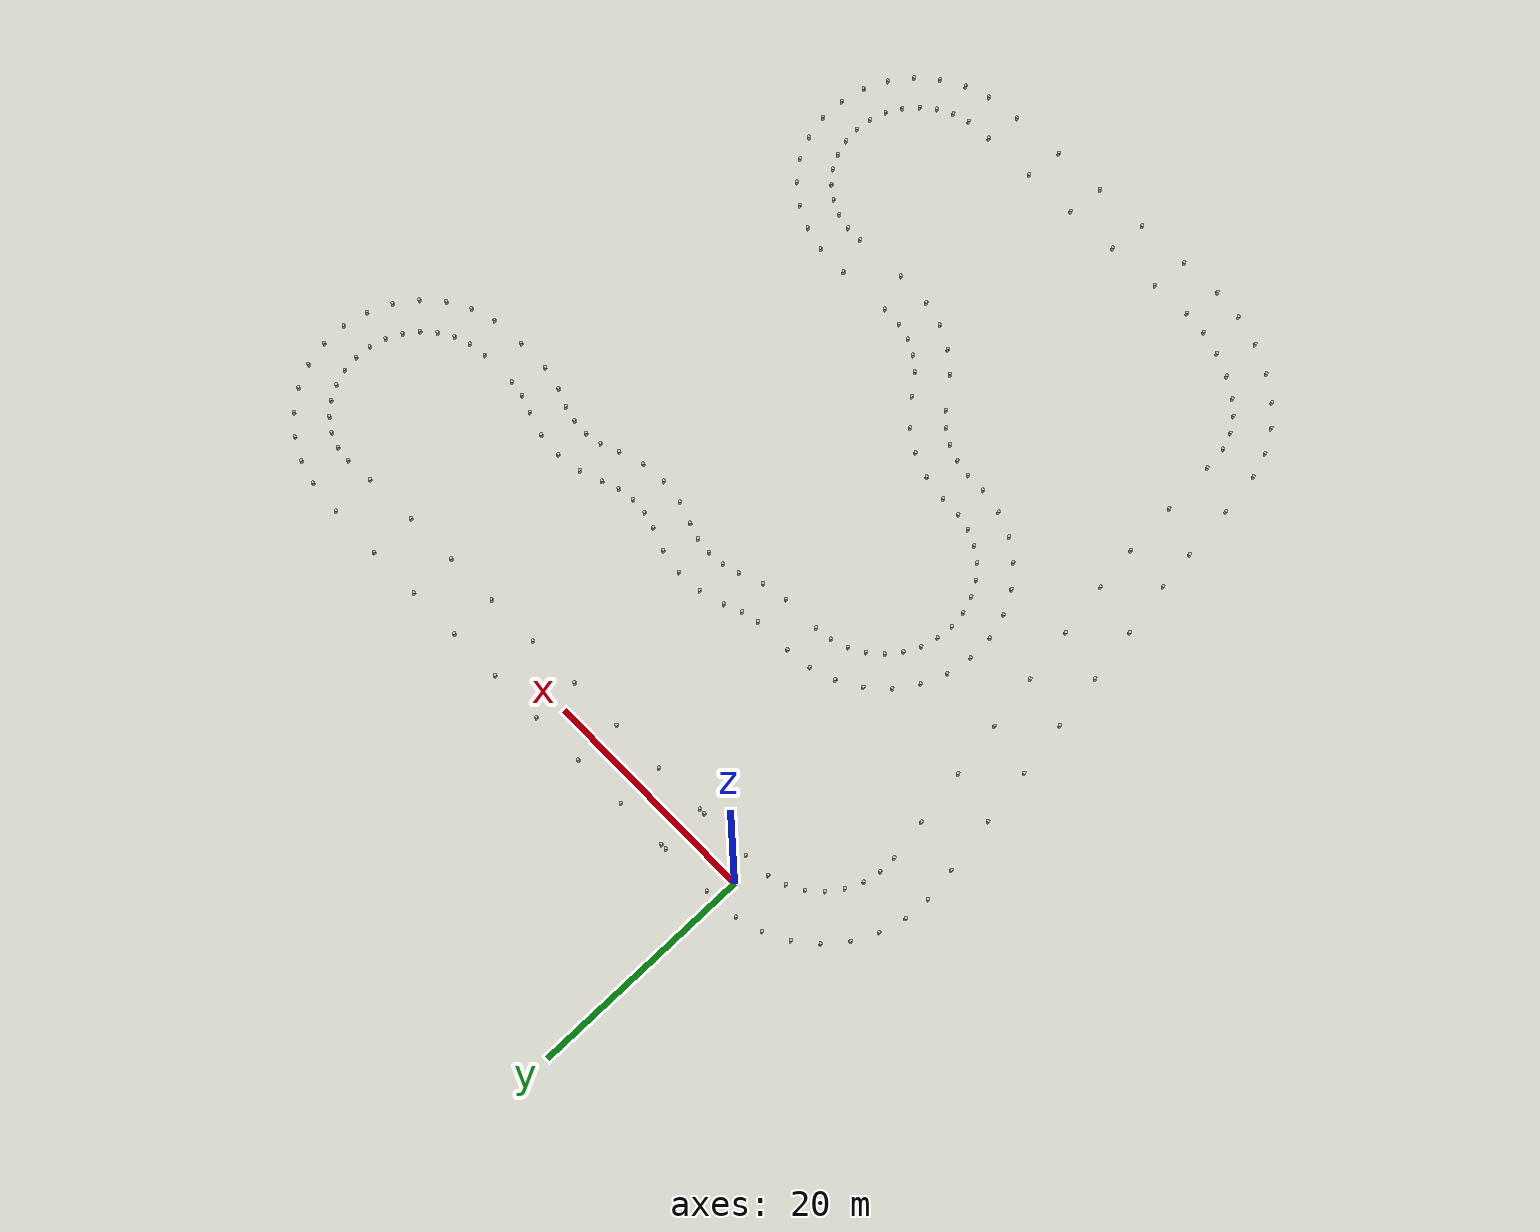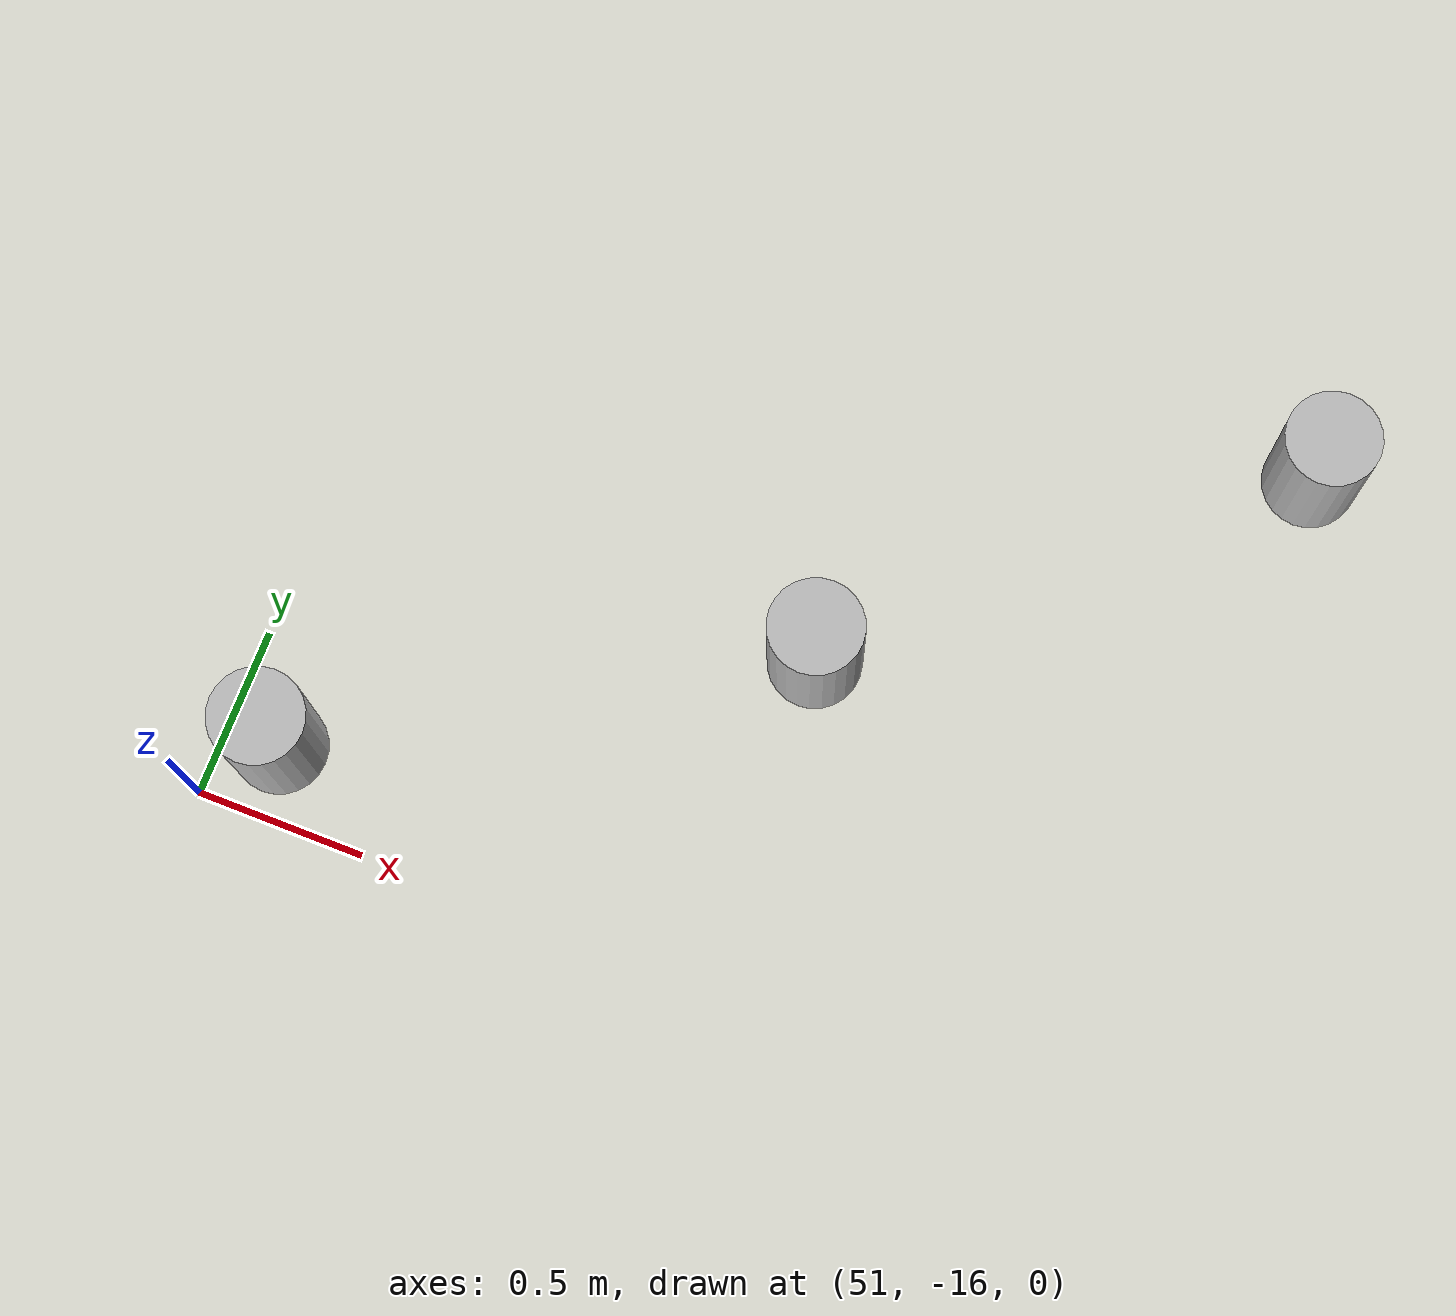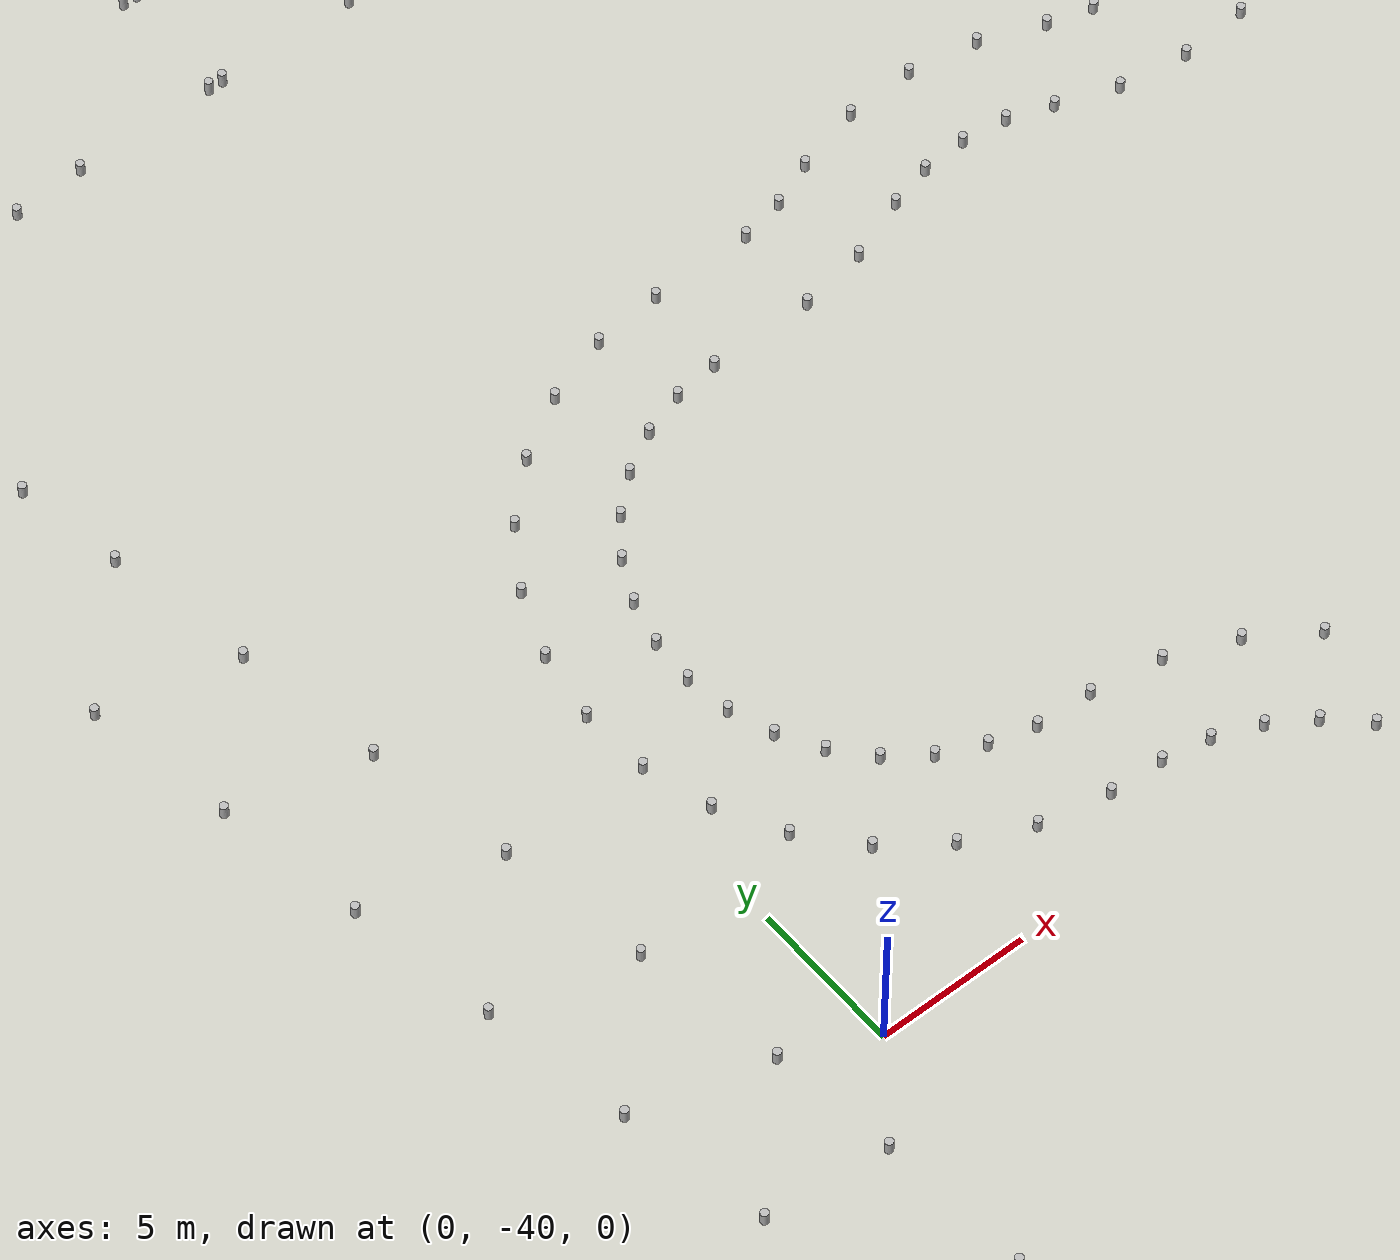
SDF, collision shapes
<?xml version='1.0'?>
<sdf version='1.6'>
  <model name='track'>

    <include>
      <pose>11.0 2.1 0.225 0 0 0</pose>
      <uri>model://blue_cone</uri>
      <name>blue_cone_0</name>

      <covariance x="0.01" y="0.01" xy="0.0"/>

    </include>

    <include>
      <pose>16.0 2.1 0.225 0 0 0</pose>
      <uri>model://blue_cone</uri>
      <name>blue_cone_1</name>

      <covariance x="0.01" y="0.01" xy="0.0"/>

    </include>

    <include>
      <pose>21.0 2.1 0.225 0 0 0</pose>
      <uri>model://blue_cone</uri>
      <name>blue_cone_2</name>

      <covariance x="0.01" y="0.01" xy="0.0"/>

    </include>

    <include>
      <pose>26.0 2.1 0.225 0 0 0</pose>
      <uri>model://blue_cone</uri>
      <name>blue_cone_3</name>

      <covariance x="0.01" y="0.01" xy="0.0"/>

    </include>

    <include>
      <pose>31.0 2.1 0.225 0 0 0</pose>
      <uri>model://blue_cone</uri>
      <name>blue_cone_4</name>

      <covariance x="0.01" y="0.01" xy="0.0"/>

    </include>

    <include>
      <pose>36.0 2.1 0.225 0 0 0</pose>
      <uri>model://blue_cone</uri>
      <name>blue_cone_5</name>

      <covariance x="0.01" y="0.01" xy="0.0"/>

    </include>

    <include>
      <pose>41.0 2.1 0.225 0 0 0</pose>
      <uri>model://blue_cone</uri>
      <name>blue_cone_6</name>

      <covariance x="0.01" y="0.01" xy="0.0"/>

    </include>

    <include>
      <pose>45.99 1.96 0.225 0 0 0</pose>
      <uri>model://blue_cone</uri>
      <name>blue_cone_7</name>

      <covariance x="0.01" y="0.01" xy="0.0"/>

    </include>

    <include>
      <pose>49.23 1.67 0.225 0 0 0</pose>
      <uri>model://blue_cone</uri>
      <name>blue_cone_8</name>

      <covariance x="0.01" y="0.01" xy="0.0"/>

    </include>

    <include>
      <pose>51.45 1.06 0.225 0 0 0</pose>
      <uri>model://blue_cone</uri>
      <name>blue_cone_9</name>

      <covariance x="0.01" y="0.01" xy="0.0"/>

    </include>

    <include>
      <pose>53.51 0.03 0.225 0 0 0</pose>
      <uri>model://blue_cone</uri>
      <name>blue_cone_10</name>

      <covariance x="0.01" y="0.01" xy="0.0"/>

    </include>

    <include>
      <pose>55.32 -1.39 0.225 0 0 0</pose>
      <uri>model://blue_cone</uri>
      <name>blue_cone_11</name>

      <covariance x="0.01" y="0.01" xy="0.0"/>

    </include>

    <include>
      <pose>56.8 -3.15 0.225 0 0 0</pose>
      <uri>model://blue_cone</uri>
      <name>blue_cone_12</name>

      <covariance x="0.01" y="0.01" xy="0.0"/>

    </include>

    <include>
      <pose>57.87 -5.19 0.225 0 0 0</pose>
      <uri>model://blue_cone</uri>
      <name>blue_cone_13</name>

      <covariance x="0.01" y="0.01" xy="0.0"/>

    </include>

    <include>
      <pose>58.46 -7.42 0.225 0 0 0</pose>
      <uri>model://blue_cone</uri>
      <name>blue_cone_14</name>

      <covariance x="0.01" y="0.01" xy="0.0"/>

    </include>

    <include>
      <pose>58.56 -9.72 0.225 0 0 0</pose>
      <uri>model://blue_cone</uri>
      <name>blue_cone_15</name>

      <covariance x="0.01" y="0.01" xy="0.0"/>

    </include>

    <include>
      <pose>58.15 -11.98 0.225 0 0 0</pose>
      <uri>model://blue_cone</uri>
      <name>blue_cone_16</name>

      <covariance x="0.01" y="0.01" xy="0.0"/>

    </include>

    <include>
      <pose>57.26 -14.11 0.225 0 0 0</pose>
      <uri>model://blue_cone</uri>
      <name>blue_cone_17</name>

      <covariance x="0.01" y="0.01" xy="0.0"/>

    </include>

    <include>
      <pose>55.92 -15.98 0.225 0 0 0</pose>
      <uri>model://blue_cone</uri>
      <name>blue_cone_18</name>

      <covariance x="0.01" y="0.01" xy="0.0"/>

    </include>

    <include>
      <pose>54.21 -17.53 0.225 0 0 0</pose>
      <uri>model://blue_cone</uri>
      <name>blue_cone_19</name>

      <covariance x="0.01" y="0.01" xy="0.0"/>

    </include>

    <include>
      <pose>52.21 -18.66 0.225 0 0 0</pose>
      <uri>model://blue_cone</uri>
      <name>blue_cone_20</name>

      <covariance x="0.01" y="0.01" xy="0.0"/>

    </include>

    <include>
      <pose>50.0 -19.32 0.225 0 0 0</pose>
      <uri>model://blue_cone</uri>
      <name>blue_cone_21</name>

      <covariance x="0.01" y="0.01" xy="0.0"/>

    </include>

    <include>
      <pose>46.79 -19.5 0.225 0 0 0</pose>
      <uri>model://blue_cone</uri>
      <name>blue_cone_22</name>

      <covariance x="0.01" y="0.01" xy="0.0"/>

    </include>

    <include>
      <pose>43.68 -19.42 0.225 0 0 0</pose>
      <uri>model://blue_cone</uri>
      <name>blue_cone_23</name>

      <covariance x="0.01" y="0.01" xy="0.0"/>

    </include>

    <include>
      <pose>41.41 -18.88 0.225 0 0 0</pose>
      <uri>model://blue_cone</uri>
      <name>blue_cone_24</name>

      <covariance x="0.01" y="0.01" xy="0.0"/>

    </include>

    <include>
      <pose>39.78 -18.22 0.225 0 0 0</pose>
      <uri>model://blue_cone</uri>
      <name>blue_cone_25</name>

      <covariance x="0.01" y="0.01" xy="0.0"/>

    </include>

    <include>
      <pose>38.28 -17.85 0.225 0 0 0</pose>
      <uri>model://blue_cone</uri>
      <name>blue_cone_26</name>

      <covariance x="0.01" y="0.01" xy="0.0"/>

    </include>

    <include>
      <pose>36.75 -17.79 0.225 0 0 0</pose>
      <uri>model://blue_cone</uri>
      <name>blue_cone_27</name>

      <covariance x="0.01" y="0.01" xy="0.0"/>

    </include>

    <include>
      <pose>35.23 -18.02 0.225 0 0 0</pose>
      <uri>model://blue_cone</uri>
      <name>blue_cone_28</name>

      <covariance x="0.01" y="0.01" xy="0.0"/>

    </include>

    <include>
      <pose>33.59 -18.63 0.225 0 0 0</pose>
      <uri>model://blue_cone</uri>
      <name>blue_cone_29</name>

      <covariance x="0.01" y="0.01" xy="0.0"/>

    </include>

    <include>
      <pose>31.35 -19.31 0.225 0 0 0</pose>
      <uri>model://blue_cone</uri>
      <name>blue_cone_30</name>

      <covariance x="0.01" y="0.01" xy="0.0"/>

    </include>

    <include>
      <pose>29.02 -19.49 0.225 0 0 0</pose>
      <uri>model://blue_cone</uri>
      <name>blue_cone_31</name>

      <covariance x="0.01" y="0.01" xy="0.0"/>

    </include>

    <include>
      <pose>26.7 -19.17 0.225 0 0 0</pose>
      <uri>model://blue_cone</uri>
      <name>blue_cone_32</name>

      <covariance x="0.01" y="0.01" xy="0.0"/>

    </include>

    <include>
      <pose>24.73 -18.47 0.225 0 0 0</pose>
      <uri>model://blue_cone</uri>
      <name>blue_cone_33</name>

      <covariance x="0.01" y="0.01" xy="0.0"/>

    </include>

    <include>
      <pose>23.27 -17.97 0.225 0 0 0</pose>
      <uri>model://blue_cone</uri>
      <name>blue_cone_34</name>

      <covariance x="0.01" y="0.01" xy="0.0"/>

    </include>

    <include>
      <pose>21.75 -17.78 0.225 0 0 0</pose>
      <uri>model://blue_cone</uri>
      <name>blue_cone_35</name>

      <covariance x="0.01" y="0.01" xy="0.0"/>

    </include>

    <include>
      <pose>20.21 -17.89 0.225 0 0 0</pose>
      <uri>model://blue_cone</uri>
      <name>blue_cone_36</name>

      <covariance x="0.01" y="0.01" xy="0.0"/>

    </include>

    <include>
      <pose>18.73 -18.29 0.225 0 0 0</pose>
      <uri>model://blue_cone</uri>
      <name>blue_cone_37</name>

      <covariance x="0.01" y="0.01" xy="0.0"/>

    </include>

    <include>
      <pose>16.66 -19.08 0.225 0 0 0</pose>
      <uri>model://blue_cone</uri>
      <name>blue_cone_38</name>

      <covariance x="0.01" y="0.01" xy="0.0"/>

    </include>

    <include>
      <pose>14.36 -19.48 0.225 0 0 0</pose>
      <uri>model://blue_cone</uri>
      <name>blue_cone_39</name>

      <covariance x="0.01" y="0.01" xy="0.0"/>

    </include>

    <include>
      <pose>10.84 -19.5 0.225 0 0 0</pose>
      <uri>model://blue_cone</uri>
      <name>blue_cone_40</name>

      <covariance x="0.01" y="0.01" xy="0.0"/>

    </include>

    <include>
      <pose>9.31 -19.69 0.225 0 0 0</pose>
      <uri>model://blue_cone</uri>
      <name>blue_cone_41</name>

      <covariance x="0.01" y="0.01" xy="0.0"/>

    </include>

    <include>
      <pose>7.85 -20.18 0.225 0 0 0</pose>
      <uri>model://blue_cone</uri>
      <name>blue_cone_42</name>

      <covariance x="0.01" y="0.01" xy="0.0"/>

    </include>

    <include>
      <pose>6.51 -20.94 0.225 0 0 0</pose>
      <uri>model://blue_cone</uri>
      <name>blue_cone_43</name>

      <covariance x="0.01" y="0.01" xy="0.0"/>

    </include>

    <include>
      <pose>5.35 -21.95 0.225 0 0 0</pose>
      <uri>model://blue_cone</uri>
      <name>blue_cone_44</name>

      <covariance x="0.01" y="0.01" xy="0.0"/>

    </include>

    <include>
      <pose>4.41 -23.16 0.225 0 0 0</pose>
      <uri>model://blue_cone</uri>
      <name>blue_cone_45</name>

      <covariance x="0.01" y="0.01" xy="0.0"/>

    </include>

    <include>
      <pose>3.73 -24.54 0.225 0 0 0</pose>
      <uri>model://blue_cone</uri>
      <name>blue_cone_46</name>

      <covariance x="0.01" y="0.01" xy="0.0"/>

    </include>

    <include>
      <pose>3.33 -26.03 0.225 0 0 0</pose>
      <uri>model://blue_cone</uri>
      <name>blue_cone_47</name>

      <covariance x="0.01" y="0.01" xy="0.0"/>

    </include>

    <include>
      <pose>3.23 -27.56 0.225 0 0 0</pose>
      <uri>model://blue_cone</uri>
      <name>blue_cone_48</name>

      <covariance x="0.01" y="0.01" xy="0.0"/>

    </include>

    <include>
      <pose>3.43 -29.09 0.225 0 0 0</pose>
      <uri>model://blue_cone</uri>
      <name>blue_cone_49</name>

      <covariance x="0.01" y="0.01" xy="0.0"/>

    </include>

    <include>
      <pose>3.93 -30.54 0.225 0 0 0</pose>
      <uri>model://blue_cone</uri>
      <name>blue_cone_50</name>

      <covariance x="0.01" y="0.01" xy="0.0"/>

    </include>

    <include>
      <pose>4.7 -31.87 0.225 0 0 0</pose>
      <uri>model://blue_cone</uri>
      <name>blue_cone_51</name>

      <covariance x="0.01" y="0.01" xy="0.0"/>

    </include>

    <include>
      <pose>5.72 -33.03 0.225 0 0 0</pose>
      <uri>model://blue_cone</uri>
      <name>blue_cone_52</name>

      <covariance x="0.01" y="0.01" xy="0.0"/>

    </include>

    <include>
      <pose>6.95 -33.95 0.225 0 0 0</pose>
      <uri>model://blue_cone</uri>
      <name>blue_cone_53</name>

      <covariance x="0.01" y="0.01" xy="0.0"/>

    </include>

    <include>
      <pose>8.34 -34.62 0.225 0 0 0</pose>
      <uri>model://blue_cone</uri>
      <name>blue_cone_54</name>

      <covariance x="0.01" y="0.01" xy="0.0"/>

    </include>

    <include>
      <pose>9.83 -35.01 0.225 0 0 0</pose>
      <uri>model://blue_cone</uri>
      <name>blue_cone_55</name>

      <covariance x="0.01" y="0.01" xy="0.0"/>

    </include>

    <include>
      <pose>11.71 -35.12 0.225 0 0 0</pose>
      <uri>model://blue_cone</uri>
      <name>blue_cone_56</name>

      <covariance x="0.01" y="0.01" xy="0.0"/>

    </include>

    <include>
      <pose>14.05 -35.52 0.225 0 0 0</pose>
      <uri>model://blue_cone</uri>
      <name>blue_cone_57</name>

      <covariance x="0.01" y="0.01" xy="0.0"/>

    </include>

    <include>
      <pose>16.25 -36.41 0.225 0 0 0</pose>
      <uri>model://blue_cone</uri>
      <name>blue_cone_58</name>

      <covariance x="0.01" y="0.01" xy="0.0"/>

    </include>

    <include>
      <pose>18.21 -37.74 0.225 0 0 0</pose>
      <uri>model://blue_cone</uri>
      <name>blue_cone_59</name>

      <covariance x="0.01" y="0.01" xy="0.0"/>

    </include>

    <include>
      <pose>20.15 -39.86 0.225 0 0 0</pose>
      <uri>model://blue_cone</uri>
      <name>blue_cone_60</name>

      <covariance x="0.01" y="0.01" xy="0.0"/>

    </include>

    <include>
      <pose>21.61 -41.67 0.225 0 0 0</pose>
      <uri>model://blue_cone</uri>
      <name>blue_cone_61</name>

      <covariance x="0.01" y="0.01" xy="0.0"/>

    </include>

    <include>
      <pose>22.82 -42.69 0.225 0 0 0</pose>
      <uri>model://blue_cone</uri>
      <name>blue_cone_62</name>

      <covariance x="0.01" y="0.01" xy="0.0"/>

    </include>

    <include>
      <pose>24.21 -43.45 0.225 0 0 0</pose>
      <uri>model://blue_cone</uri>
      <name>blue_cone_63</name>

      <covariance x="0.01" y="0.01" xy="0.0"/>

    </include>

    <include>
      <pose>25.72 -43.91 0.225 0 0 0</pose>
      <uri>model://blue_cone</uri>
      <name>blue_cone_64</name>

      <covariance x="0.01" y="0.01" xy="0.0"/>

    </include>

    <include>
      <pose>27.59 -44.04 0.225 0 0 0</pose>
      <uri>model://blue_cone</uri>
      <name>blue_cone_65</name>

      <covariance x="0.01" y="0.01" xy="0.0"/>

    </include>

    <include>
      <pose>32.59 -44.0 0.225 0 0 0</pose>
      <uri>model://blue_cone</uri>
      <name>blue_cone_66</name>

      <covariance x="0.01" y="0.01" xy="0.0"/>

    </include>

    <include>
      <pose>35.56 -44.16 0.225 0 0 0</pose>
      <uri>model://blue_cone</uri>
      <name>blue_cone_67</name>

      <covariance x="0.01" y="0.01" xy="0.0"/>

    </include>

    <include>
      <pose>37.81 -44.76 0.225 0 0 0</pose>
      <uri>model://blue_cone</uri>
      <name>blue_cone_68</name>

      <covariance x="0.01" y="0.01" xy="0.0"/>

    </include>

    <include>
      <pose>39.88 -45.81 0.225 0 0 0</pose>
      <uri>model://blue_cone</uri>
      <name>blue_cone_69</name>

      <covariance x="0.01" y="0.01" xy="0.0"/>

    </include>

    <include>
      <pose>41.69 -47.27 0.225 0 0 0</pose>
      <uri>model://blue_cone</uri>
      <name>blue_cone_70</name>

      <covariance x="0.01" y="0.01" xy="0.0"/>

    </include>

    <include>
      <pose>43.15 -49.08 0.225 0 0 0</pose>
      <uri>model://blue_cone</uri>
      <name>blue_cone_71</name>

      <covariance x="0.01" y="0.01" xy="0.0"/>

    </include>

    <include>
      <pose>44.18 -51.16 0.225 0 0 0</pose>
      <uri>model://blue_cone</uri>
      <name>blue_cone_72</name>

      <covariance x="0.01" y="0.01" xy="0.0"/>

    </include>

    <include>
      <pose>44.74 -53.42 0.225 0 0 0</pose>
      <uri>model://blue_cone</uri>
      <name>blue_cone_73</name>

      <covariance x="0.01" y="0.01" xy="0.0"/>

    </include>

    <include>
      <pose>44.79 -55.75 0.225 0 0 0</pose>
      <uri>model://blue_cone</uri>
      <name>blue_cone_74</name>

      <covariance x="0.01" y="0.01" xy="0.0"/>

    </include>

    <include>
      <pose>44.34 -58.03 0.225 0 0 0</pose>
      <uri>model://blue_cone</uri>
      <name>blue_cone_75</name>

      <covariance x="0.01" y="0.01" xy="0.0"/>

    </include>

    <include>
      <pose>43.41 -60.16 0.225 0 0 0</pose>
      <uri>model://blue_cone</uri>
      <name>blue_cone_76</name>

      <covariance x="0.01" y="0.01" xy="0.0"/>

    </include>

    <include>
      <pose>42.04 -62.04 0.225 0 0 0</pose>
      <uri>model://blue_cone</uri>
      <name>blue_cone_77</name>

      <covariance x="0.01" y="0.01" xy="0.0"/>

    </include>

    <include>
      <pose>40.3 -63.58 0.225 0 0 0</pose>
      <uri>model://blue_cone</uri>
      <name>blue_cone_78</name>

      <covariance x="0.01" y="0.01" xy="0.0"/>

    </include>

    <include>
      <pose>38.27 -64.73 0.225 0 0 0</pose>
      <uri>model://blue_cone</uri>
      <name>blue_cone_79</name>

      <covariance x="0.01" y="0.01" xy="0.0"/>

    </include>

    <include>
      <pose>36.05 -65.42 0.225 0 0 0</pose>
      <uri>model://blue_cone</uri>
      <name>blue_cone_80</name>

      <covariance x="0.01" y="0.01" xy="0.0"/>

    </include>

    <include>
      <pose>32.82 -65.67 0.225 0 0 0</pose>
      <uri>model://blue_cone</uri>
      <name>blue_cone_81</name>

      <covariance x="0.01" y="0.01" xy="0.0"/>

    </include>

    <include>
      <pose>27.82 -65.74 0.225 0 0 0</pose>
      <uri>model://blue_cone</uri>
      <name>blue_cone_82</name>

      <covariance x="0.01" y="0.01" xy="0.0"/>

    </include>

    <include>
      <pose>22.82 -65.74 0.225 0 0 0</pose>
      <uri>model://blue_cone</uri>
      <name>blue_cone_83</name>

      <covariance x="0.01" y="0.01" xy="0.0"/>

    </include>

    <include>
      <pose>17.82 -65.74 0.225 0 0 0</pose>
      <uri>model://blue_cone</uri>
      <name>blue_cone_84</name>

      <covariance x="0.01" y="0.01" xy="0.0"/>

    </include>

    <include>
      <pose>12.82 -65.74 0.225 0 0 0</pose>
      <uri>model://blue_cone</uri>
      <name>blue_cone_85</name>

      <covariance x="0.01" y="0.01" xy="0.0"/>

    </include>

    <include>
      <pose>8.9 -65.7 0.225 0 0 0</pose>
      <uri>model://blue_cone</uri>
      <name>blue_cone_86</name>

      <covariance x="0.01" y="0.01" xy="0.0"/>

    </include>

    <include>
      <pose>6.04 -65.27 0.225 0 0 0</pose>
      <uri>model://blue_cone</uri>
      <name>blue_cone_87</name>

      <covariance x="0.01" y="0.01" xy="0.0"/>

    </include>

    <include>
      <pose>3.29 -64.36 0.225 0 0 0</pose>
      <uri>model://blue_cone</uri>
      <name>blue_cone_88</name>

      <covariance x="0.01" y="0.01" xy="0.0"/>

    </include>

    <include>
      <pose>0.75 -62.99 0.225 0 0 0</pose>
      <uri>model://blue_cone</uri>
      <name>blue_cone_89</name>

      <covariance x="0.01" y="0.01" xy="0.0"/>

    </include>

    <include>
      <pose>-1.38 -61.32 0.225 0 0 0</pose>
      <uri>model://blue_cone</uri>
      <name>blue_cone_90</name>

      <covariance x="0.01" y="0.01" xy="0.0"/>

    </include>

    <include>
      <pose>-2.95 -59.51 0.225 0 0 0</pose>
      <uri>model://blue_cone</uri>
      <name>blue_cone_91</name>

      <covariance x="0.01" y="0.01" xy="0.0"/>

    </include>

    <include>
      <pose>-4.14 -57.43 0.225 0 0 0</pose>
      <uri>model://blue_cone</uri>
      <name>blue_cone_92</name>

      <covariance x="0.01" y="0.01" xy="0.0"/>

    </include>

    <include>
      <pose>-4.9 -55.16 0.225 0 0 0</pose>
      <uri>model://blue_cone</uri>
      <name>blue_cone_93</name>

      <covariance x="0.01" y="0.01" xy="0.0"/>

    </include>

    <include>
      <pose>-5.46 -51.16 0.225 0 0 0</pose>
      <uri>model://blue_cone</uri>
      <name>blue_cone_94</name>

      <covariance x="0.01" y="0.01" xy="0.0"/>

    </include>

    <include>
      <pose>-5.97 -46.18 0.225 0 0 0</pose>
      <uri>model://blue_cone</uri>
      <name>blue_cone_95</name>

      <covariance x="0.01" y="0.01" xy="0.0"/>

    </include>

    <include>
      <pose>-6.38 -42.55 0.225 0 0 0</pose>
      <uri>model://blue_cone</uri>
      <name>blue_cone_96</name>

      <covariance x="0.01" y="0.01" xy="0.0"/>

    </include>

    <include>
      <pose>-7.25 -37.62 0.225 0 0 0</pose>
      <uri>model://blue_cone</uri>
      <name>blue_cone_97</name>

      <covariance x="0.01" y="0.01" xy="0.0"/>

    </include>

    <include>
      <pose>-8.05 -32.69 0.225 0 0 0</pose>
      <uri>model://blue_cone</uri>
      <name>blue_cone_98</name>

      <covariance x="0.01" y="0.01" xy="0.0"/>

    </include>

    <include>
      <pose>-8.83 -27.75 0.225 0 0 0</pose>
      <uri>model://blue_cone</uri>
      <name>blue_cone_99</name>

      <covariance x="0.01" y="0.01" xy="0.0"/>

    </include>

    <include>
      <pose>-9.62 -22.82 0.225 0 0 0</pose>
      <uri>model://blue_cone</uri>
      <name>blue_cone_100</name>

      <covariance x="0.01" y="0.01" xy="0.0"/>

    </include>

    <include>
      <pose>-10.41 -17.88 0.225 0 0 0</pose>
      <uri>model://blue_cone</uri>
      <name>blue_cone_101</name>

      <covariance x="0.01" y="0.01" xy="0.0"/>

    </include>

    <include>
      <pose>-11.2 -12.94 0.225 0 0 0</pose>
      <uri>model://blue_cone</uri>
      <name>blue_cone_102</name>

      <covariance x="0.01" y="0.01" xy="0.0"/>

    </include>

    <include>
      <pose>-11.59 -9.93 0.225 0 0 0</pose>
      <uri>model://blue_cone</uri>
      <name>blue_cone_103</name>

      <covariance x="0.01" y="0.01" xy="0.0"/>

    </include>

    <include>
      <pose>-11.44 -7.58 0.225 0 0 0</pose>
      <uri>model://blue_cone</uri>
      <name>blue_cone_104</name>

      <covariance x="0.01" y="0.01" xy="0.0"/>

    </include>

    <include>
      <pose>-10.81 -5.3 0.225 0 0 0</pose>
      <uri>model://blue_cone</uri>
      <name>blue_cone_105</name>

      <covariance x="0.01" y="0.01" xy="0.0"/>

    </include>

    <include>
      <pose>-9.74 -3.2 0.225 0 0 0</pose>
      <uri>model://blue_cone</uri>
      <name>blue_cone_106</name>

      <covariance x="0.01" y="0.01" xy="0.0"/>

    </include>

    <include>
      <pose>-8.27 -1.36 0.225 0 0 0</pose>
      <uri>model://blue_cone</uri>
      <name>blue_cone_107</name>

      <covariance x="0.01" y="0.01" xy="0.0"/>

    </include>

    <include>
      <pose>-6.45 0.14 0.225 0 0 0</pose>
      <uri>model://blue_cone</uri>
      <name>blue_cone_108</name>

      <covariance x="0.01" y="0.01" xy="0.0"/>

    </include>

    <include>
      <pose>-4.37 1.24 0.225 0 0 0</pose>
      <uri>model://blue_cone</uri>
      <name>blue_cone_109</name>

      <covariance x="0.01" y="0.01" xy="0.0"/>

    </include>

    <include>
      <pose>-2.1 1.91 0.225 0 0 0</pose>
      <uri>model://blue_cone</uri>
      <name>blue_cone_110</name>

      <covariance x="0.01" y="0.01" xy="0.0"/>

    </include>

    <include>
      <pose>1.0 2.1 0.225 0 0 0</pose>
      <uri>model://blue_cone</uri>
      <name>blue_cone_111</name>

      <covariance x="0.01" y="0.01" xy="0.0"/>

    </include>

    <include>
      <pose>11.02 -2.1 0.225 0 0 0</pose>
      <uri>model://yellow_cone</uri>
      <name>yellow_cone_112</name>

      <covariance x="0.01" y="0.01" xy="0.0"/>

    </include>

    <include>
      <pose>16.04 -2.1 0.225 0 0 0</pose>
      <uri>model://yellow_cone</uri>
      <name>yellow_cone_113</name>

      <covariance x="0.01" y="0.01" xy="0.0"/>

    </include>

    <include>
      <pose>21.06 -2.1 0.225 0 0 0</pose>
      <uri>model://yellow_cone</uri>
      <name>yellow_cone_114</name>

      <covariance x="0.01" y="0.01" xy="0.0"/>

    </include>

    <include>
      <pose>26.08 -2.1 0.225 0 0 0</pose>
      <uri>model://yellow_cone</uri>
      <name>yellow_cone_115</name>

      <covariance x="0.01" y="0.01" xy="0.0"/>

    </include>

    <include>
      <pose>31.1 -2.1 0.225 0 0 0</pose>
      <uri>model://yellow_cone</uri>
      <name>yellow_cone_116</name>

      <covariance x="0.01" y="0.01" xy="0.0"/>

    </include>

    <include>
      <pose>36.12 -2.1 0.225 0 0 0</pose>
      <uri>model://yellow_cone</uri>
      <name>yellow_cone_117</name>

      <covariance x="0.01" y="0.01" xy="0.0"/>

    </include>

    <include>
      <pose>41.14 -2.1 0.225 0 0 0</pose>
      <uri>model://yellow_cone</uri>
      <name>yellow_cone_118</name>

      <covariance x="0.01" y="0.01" xy="0.0"/>

    </include>

    <include>
      <pose>46.16 -1.95 0.225 0 0 0</pose>
      <uri>model://yellow_cone</uri>
      <name>yellow_cone_119</name>

      <covariance x="0.01" y="0.01" xy="0.0"/>

    </include>

    <include>
      <pose>48.77 -1.78 0.225 0 0 0</pose>
      <uri>model://yellow_cone</uri>
      <name>yellow_cone_120</name>

      <covariance x="0.01" y="0.01" xy="0.0"/>

    </include>

    <include>
      <pose>50.26 -1.95 0.225 0 0 0</pose>
      <uri>model://yellow_cone</uri>
      <name>yellow_cone_121</name>

      <covariance x="0.01" y="0.01" xy="0.0"/>

    </include>

    <include>
      <pose>51.67 -2.46 0.225 0 0 0</pose>
      <uri>model://yellow_cone</uri>
      <name>yellow_cone_122</name>

      <covariance x="0.01" y="0.01" xy="0.0"/>

    </include>

    <include>
      <pose>52.93 -3.28 0.225 0 0 0</pose>
      <uri>model://yellow_cone</uri>
      <name>yellow_cone_123</name>

      <covariance x="0.01" y="0.01" xy="0.0"/>

    </include>

    <include>
      <pose>53.98 -4.36 0.225 0 0 0</pose>
      <uri>model://yellow_cone</uri>
      <name>yellow_cone_124</name>

      <covariance x="0.01" y="0.01" xy="0.0"/>

    </include>

    <include>
      <pose>54.78 -5.63 0.225 0 0 0</pose>
      <uri>model://yellow_cone</uri>
      <name>yellow_cone_125</name>

      <covariance x="0.01" y="0.01" xy="0.0"/>

    </include>

    <include>
      <pose>55.32 -7.03 0.225 0 0 0</pose>
      <uri>model://yellow_cone</uri>
      <name>yellow_cone_126</name>

      <covariance x="0.01" y="0.01" xy="0.0"/>

    </include>

    <include>
      <pose>55.57 -8.52 0.225 0 0 0</pose>
      <uri>model://yellow_cone</uri>
      <name>yellow_cone_127</name>

      <covariance x="0.01" y="0.01" xy="0.0"/>

    </include>

    <include>
      <pose>55.52 -10.02 0.225 0 0 0</pose>
      <uri>model://yellow_cone</uri>
      <name>yellow_cone_128</name>

      <covariance x="0.01" y="0.01" xy="0.0"/>

    </include>

    <include>
      <pose>55.16 -11.48 0.225 0 0 0</pose>
      <uri>model://yellow_cone</uri>
      <name>yellow_cone_129</name>

      <covariance x="0.01" y="0.01" xy="0.0"/>

    </include>

    <include>
      <pose>54.52 -12.84 0.225 0 0 0</pose>
      <uri>model://yellow_cone</uri>
      <name>yellow_cone_130</name>

      <covariance x="0.01" y="0.01" xy="0.0"/>

    </include>

    <include>
      <pose>53.63 -14.05 0.225 0 0 0</pose>
      <uri>model://yellow_cone</uri>
      <name>yellow_cone_131</name>

      <covariance x="0.01" y="0.01" xy="0.0"/>

    </include>

    <include>
      <pose>52.51 -15.05 0.225 0 0 0</pose>
      <uri>model://yellow_cone</uri>
      <name>yellow_cone_132</name>

      <covariance x="0.01" y="0.01" xy="0.0"/>

    </include>

    <include>
      <pose>51.21 -15.82 0.225 0 0 0</pose>
      <uri>model://yellow_cone</uri>
      <name>yellow_cone_133</name>

      <covariance x="0.01" y="0.01" xy="0.0"/>

    </include>

    <include>
      <pose>49.79 -16.3 0.225 0 0 0</pose>
      <uri>model://yellow_cone</uri>
      <name>yellow_cone_134</name>

      <covariance x="0.01" y="0.01" xy="0.0"/>

    </include>

    <include>
      <pose>48.12 -16.5 0.225 0 0 0</pose>
      <uri>model://yellow_cone</uri>
      <name>yellow_cone_135</name>

      <covariance x="0.01" y="0.01" xy="0.0"/>

    </include>

    <include>
      <pose>44.65 -16.49 0.225 0 0 0</pose>
      <uri>model://yellow_cone</uri>
      <name>yellow_cone_136</name>

      <covariance x="0.01" y="0.01" xy="0.0"/>

    </include>

    <include>
      <pose>43.12 -16.27 0.225 0 0 0</pose>
      <uri>model://yellow_cone</uri>
      <name>yellow_cone_137</name>

      <covariance x="0.01" y="0.01" xy="0.0"/>

    </include>

    <include>
      <pose>41.51 -15.68 0.225 0 0 0</pose>
      <uri>model://yellow_cone</uri>
      <name>yellow_cone_138</name>

      <covariance x="0.01" y="0.01" xy="0.0"/>

    </include>

    <include>
      <pose>39.27 -14.98 0.225 0 0 0</pose>
      <uri>model://yellow_cone</uri>
      <name>yellow_cone_139</name>

      <covariance x="0.01" y="0.01" xy="0.0"/>

    </include>

    <include>
      <pose>36.93 -14.78 0.225 0 0 0</pose>
      <uri>model://yellow_cone</uri>
      <name>yellow_cone_140</name>

      <covariance x="0.01" y="0.01" xy="0.0"/>

    </include>

    <include>
      <pose>34.6 -15.09 0.225 0 0 0</pose>
      <uri>model://yellow_cone</uri>
      <name>yellow_cone_141</name>

      <covariance x="0.01" y="0.01" xy="0.0"/>

    </include>

    <include>
      <pose>32.6 -15.79 0.225 0 0 0</pose>
      <uri>model://yellow_cone</uri>
      <name>yellow_cone_142</name>

      <covariance x="0.01" y="0.01" xy="0.0"/>

    </include>

    <include>
      <pose>31.13 -16.29 0.225 0 0 0</pose>
      <uri>model://yellow_cone</uri>
      <name>yellow_cone_143</name>

      <covariance x="0.01" y="0.01" xy="0.0"/>

    </include>

    <include>
      <pose>29.6 -16.5 0.225 0 0 0</pose>
      <uri>model://yellow_cone</uri>
      <name>yellow_cone_144</name>

      <covariance x="0.01" y="0.01" xy="0.0"/>

    </include>

    <include>
      <pose>28.06 -16.39 0.225 0 0 0</pose>
      <uri>model://yellow_cone</uri>
      <name>yellow_cone_145</name>

      <covariance x="0.01" y="0.01" xy="0.0"/>

    </include>

    <include>
      <pose>26.57 -15.99 0.225 0 0 0</pose>
      <uri>model://yellow_cone</uri>
      <name>yellow_cone_146</name>

      <covariance x="0.01" y="0.01" xy="0.0"/>

    </include>

    <include>
      <pose>24.5 -15.19 0.225 0 0 0</pose>
      <uri>model://yellow_cone</uri>
      <name>yellow_cone_147</name>

      <covariance x="0.01" y="0.01" xy="0.0"/>

    </include>

    <include>
      <pose>22.19 -14.8 0.225 0 0 0</pose>
      <uri>model://yellow_cone</uri>
      <name>yellow_cone_148</name>

      <covariance x="0.01" y="0.01" xy="0.0"/>

    </include>

    <include>
      <pose>19.84 -14.91 0.225 0 0 0</pose>
      <uri>model://yellow_cone</uri>
      <name>yellow_cone_149</name>

      <covariance x="0.01" y="0.01" xy="0.0"/>

    </include>

    <include>
      <pose>17.58 -15.52 0.225 0 0 0</pose>
      <uri>model://yellow_cone</uri>
      <name>yellow_cone_150</name>

      <covariance x="0.01" y="0.01" xy="0.0"/>

    </include>

    <include>
      <pose>16.06 -16.13 0.225 0 0 0</pose>
      <uri>model://yellow_cone</uri>
      <name>yellow_cone_151</name>

      <covariance x="0.01" y="0.01" xy="0.0"/>

    </include>

    <include>
      <pose>14.55 -16.45 0.225 0 0 0</pose>
      <uri>model://yellow_cone</uri>
      <name>yellow_cone_152</name>

      <covariance x="0.01" y="0.01" xy="0.0"/>

    </include>

    <include>
      <pose>11.1 -16.5 0.225 0 0 0</pose>
      <uri>model://yellow_cone</uri>
      <name>yellow_cone_153</name>

      <covariance x="0.01" y="0.01" xy="0.0"/>

    </include>

    <include>
      <pose>8.77 -16.74 0.225 0 0 0</pose>
      <uri>model://yellow_cone</uri>
      <name>yellow_cone_154</name>

      <covariance x="0.01" y="0.01" xy="0.0"/>

    </include>

    <include>
      <pose>6.54 -17.48 0.225 0 0 0</pose>
      <uri>model://yellow_cone</uri>
      <name>yellow_cone_155</name>

      <covariance x="0.01" y="0.01" xy="0.0"/>

    </include>

    <include>
      <pose>4.52 -18.68 0.225 0 0 0</pose>
      <uri>model://yellow_cone</uri>
      <name>yellow_cone_156</name>

      <covariance x="0.01" y="0.01" xy="0.0"/>

    </include>

    <include>
      <pose>2.81 -20.28 0.225 0 0 0</pose>
      <uri>model://yellow_cone</uri>
      <name>yellow_cone_157</name>

      <covariance x="0.01" y="0.01" xy="0.0"/>

    </include>

    <include>
      <pose>1.49 -22.22 0.225 0 0 0</pose>
      <uri>model://yellow_cone</uri>
      <name>yellow_cone_158</name>

      <covariance x="0.01" y="0.01" xy="0.0"/>

    </include>

    <include>
      <pose>0.62 -24.4 0.225 0 0 0</pose>
      <uri>model://yellow_cone</uri>
      <name>yellow_cone_159</name>

      <covariance x="0.01" y="0.01" xy="0.0"/>

    </include>

    <include>
      <pose>0.24 -26.72 0.225 0 0 0</pose>
      <uri>model://yellow_cone</uri>
      <name>yellow_cone_160</name>

      <covariance x="0.01" y="0.01" xy="0.0"/>

    </include>

    <include>
      <pose>0.37 -29.07 0.225 0 0 0</pose>
      <uri>model://yellow_cone</uri>
      <name>yellow_cone_161</name>

      <covariance x="0.01" y="0.01" xy="0.0"/>

    </include>

    <include>
      <pose>1.0 -31.33 0.225 0 0 0</pose>
      <uri>model://yellow_cone</uri>
      <name>yellow_cone_162</name>

      <covariance x="0.01" y="0.01" xy="0.0"/>

    </include>

    <include>
      <pose>2.11 -33.4 0.225 0 0 0</pose>
      <uri>model://yellow_cone</uri>
      <name>yellow_cone_163</name>

      <covariance x="0.01" y="0.01" xy="0.0"/>

    </include>

    <include>
      <pose>3.63 -35.18 0.225 0 0 0</pose>
      <uri>model://yellow_cone</uri>
      <name>yellow_cone_164</name>

      <covariance x="0.01" y="0.01" xy="0.0"/>

    </include>

    <include>
      <pose>5.51 -36.59 0.225 0 0 0</pose>
      <uri>model://yellow_cone</uri>
      <name>yellow_cone_165</name>

      <covariance x="0.01" y="0.01" xy="0.0"/>

    </include>

    <include>
      <pose>7.65 -37.56 0.225 0 0 0</pose>
      <uri>model://yellow_cone</uri>
      <name>yellow_cone_166</name>

      <covariance x="0.01" y="0.01" xy="0.0"/>

    </include>

    <include>
      <pose>9.95 -38.04 0.225 0 0 0</pose>
      <uri>model://yellow_cone</uri>
      <name>yellow_cone_167</name>

      <covariance x="0.01" y="0.01" xy="0.0"/>

    </include>

    <include>
      <pose>11.75 -38.13 0.225 0 0 0</pose>
      <uri>model://yellow_cone</uri>
      <name>yellow_cone_168</name>

      <covariance x="0.01" y="0.01" xy="0.0"/>

    </include>

    <include>
      <pose>13.31 -38.43 0.225 0 0 0</pose>
      <uri>model://yellow_cone</uri>
      <name>yellow_cone_169</name>

      <covariance x="0.01" y="0.01" xy="0.0"/>

    </include>

    <include>
      <pose>14.78 -39.03 0.225 0 0 0</pose>
      <uri>model://yellow_cone</uri>
      <name>yellow_cone_170</name>

      <covariance x="0.01" y="0.01" xy="0.0"/>

    </include>

    <include>
      <pose>16.1 -39.89 0.225 0 0 0</pose>
      <uri>model://yellow_cone</uri>
      <name>yellow_cone_171</name>

      <covariance x="0.01" y="0.01" xy="0.0"/>

    </include>

    <include>
      <pose>17.24 -41.01 0.225 0 0 0</pose>
      <uri>model://yellow_cone</uri>
      <name>yellow_cone_172</name>

      <covariance x="0.01" y="0.01" xy="0.0"/>

    </include>

    <include>
      <pose>19.36 -43.66 0.225 0 0 0</pose>
      <uri>model://yellow_cone</uri>
      <name>yellow_cone_173</name>

      <covariance x="0.01" y="0.01" xy="0.0"/>

    </include>

    <include>
      <pose>21.17 -45.2 0.225 0 0 0</pose>
      <uri>model://yellow_cone</uri>
      <name>yellow_cone_174</name>

      <covariance x="0.01" y="0.01" xy="0.0"/>

    </include>

    <include>
      <pose>23.26 -46.34 0.225 0 0 0</pose>
      <uri>model://yellow_cone</uri>
      <name>yellow_cone_175</name>

      <covariance x="0.01" y="0.01" xy="0.0"/>

    </include>

    <include>
      <pose>25.54 -47.03 0.225 0 0 0</pose>
      <uri>model://yellow_cone</uri>
      <name>yellow_cone_176</name>

      <covariance x="0.01" y="0.01" xy="0.0"/>

    </include>

    <include>
      <pose>28.88 -47.27 0.225 0 0 0</pose>
      <uri>model://yellow_cone</uri>
      <name>yellow_cone_177</name>

      <covariance x="0.01" y="0.01" xy="0.0"/>

    </include>

    <include>
      <pose>33.83 -47.25 0.225 0 0 0</pose>
      <uri>model://yellow_cone</uri>
      <name>yellow_cone_178</name>

      <covariance x="0.01" y="0.01" xy="0.0"/>

    </include>

    <include>
      <pose>35.36 -47.3 0.225 0 0 0</pose>
      <uri>model://yellow_cone</uri>
      <name>yellow_cone_179</name>

      <covariance x="0.01" y="0.01" xy="0.0"/>

    </include>

    <include>
      <pose>36.85 -47.67 0.225 0 0 0</pose>
      <uri>model://yellow_cone</uri>
      <name>yellow_cone_180</name>

      <covariance x="0.01" y="0.01" xy="0.0"/>

    </include>

    <include>
      <pose>38.23 -48.33 0.225 0 0 0</pose>
      <uri>model://yellow_cone</uri>
      <name>yellow_cone_181</name>

      <covariance x="0.01" y="0.01" xy="0.0"/>

    </include>

    <include>
      <pose>39.44 -49.26 0.225 0 0 0</pose>
      <uri>model://yellow_cone</uri>
      <name>yellow_cone_182</name>

      <covariance x="0.01" y="0.01" xy="0.0"/>

    </include>

    <include>
      <pose>40.44 -50.42 0.225 0 0 0</pose>
      <uri>model://yellow_cone</uri>
      <name>yellow_cone_183</name>

      <covariance x="0.01" y="0.01" xy="0.0"/>

    </include>

    <include>
      <pose>41.19 -51.76 0.225 0 0 0</pose>
      <uri>model://yellow_cone</uri>
      <name>yellow_cone_184</name>

      <covariance x="0.01" y="0.01" xy="0.0"/>

    </include>

    <include>
      <pose>41.66 -53.22 0.225 0 0 0</pose>
      <uri>model://yellow_cone</uri>
      <name>yellow_cone_185</name>

      <covariance x="0.01" y="0.01" xy="0.0"/>

    </include>

    <include>
      <pose>41.83 -54.74 0.225 0 0 0</pose>
      <uri>model://yellow_cone</uri>
      <name>yellow_cone_186</name>

      <covariance x="0.01" y="0.01" xy="0.0"/>

    </include>

    <include>
      <pose>41.7 -56.26 0.225 0 0 0</pose>
      <uri>model://yellow_cone</uri>
      <name>yellow_cone_187</name>

      <covariance x="0.01" y="0.01" xy="0.0"/>

    </include>

    <include>
      <pose>41.27 -57.73 0.225 0 0 0</pose>
      <uri>model://yellow_cone</uri>
      <name>yellow_cone_188</name>

      <covariance x="0.01" y="0.01" xy="0.0"/>

    </include>

    <include>
      <pose>40.55 -59.09 0.225 0 0 0</pose>
      <uri>model://yellow_cone</uri>
      <name>yellow_cone_189</name>

      <covariance x="0.01" y="0.01" xy="0.0"/>

    </include>

    <include>
      <pose>39.58 -60.28 0.225 0 0 0</pose>
      <uri>model://yellow_cone</uri>
      <name>yellow_cone_190</name>

      <covariance x="0.01" y="0.01" xy="0.0"/>

    </include>

    <include>
      <pose>38.4 -61.24 0.225 0 0 0</pose>
      <uri>model://yellow_cone</uri>
      <name>yellow_cone_191</name>

      <covariance x="0.01" y="0.01" xy="0.0"/>

    </include>

    <include>
      <pose>37.04 -61.95 0.225 0 0 0</pose>
      <uri>model://yellow_cone</uri>
      <name>yellow_cone_192</name>

      <covariance x="0.01" y="0.01" xy="0.0"/>

    </include>

    <include>
      <pose>35.56 -62.35 0.225 0 0 0</pose>
      <uri>model://yellow_cone</uri>
      <name>yellow_cone_193</name>

      <covariance x="0.01" y="0.01" xy="0.0"/>

    </include>

    <include>
      <pose>33.15 -62.42 0.225 0 0 0</pose>
      <uri>model://yellow_cone</uri>
      <name>yellow_cone_194</name>

      <covariance x="0.01" y="0.01" xy="0.0"/>

    </include>

    <include>
      <pose>28.13 -62.34 0.225 0 0 0</pose>
      <uri>model://yellow_cone</uri>
      <name>yellow_cone_195</name>

      <covariance x="0.01" y="0.01" xy="0.0"/>

    </include>

    <include>
      <pose>23.11 -62.34 0.225 0 0 0</pose>
      <uri>model://yellow_cone</uri>
      <name>yellow_cone_196</name>

      <covariance x="0.01" y="0.01" xy="0.0"/>

    </include>

    <include>
      <pose>18.09 -62.34 0.225 0 0 0</pose>
      <uri>model://yellow_cone</uri>
      <name>yellow_cone_197</name>

      <covariance x="0.01" y="0.01" xy="0.0"/>

    </include>

    <include>
      <pose>13.07 -62.34 0.225 0 0 0</pose>
      <uri>model://yellow_cone</uri>
      <name>yellow_cone_198</name>

      <covariance x="0.01" y="0.01" xy="0.0"/>

    </include>

    <include>
      <pose>9.34 -62.32 0.225 0 0 0</pose>
      <uri>model://yellow_cone</uri>
      <name>yellow_cone_199</name>

      <covariance x="0.01" y="0.01" xy="0.0"/>

    </include>

    <include>
      <pose>7.11 -62.03 0.225 0 0 0</pose>
      <uri>model://yellow_cone</uri>
      <name>yellow_cone_200</name>

      <covariance x="0.01" y="0.01" xy="0.0"/>

    </include>

    <include>
      <pose>4.97 -61.38 0.225 0 0 0</pose>
      <uri>model://yellow_cone</uri>
      <name>yellow_cone_201</name>

      <covariance x="0.01" y="0.01" xy="0.0"/>

    </include>

    <include>
      <pose>2.95 -60.4 0.225 0 0 0</pose>
      <uri>model://yellow_cone</uri>
      <name>yellow_cone_202</name>

      <covariance x="0.01" y="0.01" xy="0.0"/>

    </include>

    <include>
      <pose>1.18 -59.18 0.225 0 0 0</pose>
      <uri>model://yellow_cone</uri>
      <name>yellow_cone_203</name>

      <covariance x="0.01" y="0.01" xy="0.0"/>

    </include>

    <include>
      <pose>0.03 -58.05 0.225 0 0 0</pose>
      <uri>model://yellow_cone</uri>
      <name>yellow_cone_204</name>

      <covariance x="0.01" y="0.01" xy="0.0"/>

    </include>

    <include>
      <pose>-0.85 -56.7 0.225 0 0 0</pose>
      <uri>model://yellow_cone</uri>
      <name>yellow_cone_205</name>

      <covariance x="0.01" y="0.01" xy="0.0"/>

    </include>

    <include>
      <pose>-1.42 -55.19 0.225 0 0 0</pose>
      <uri>model://yellow_cone</uri>
      <name>yellow_cone_206</name>

      <covariance x="0.01" y="0.01" xy="0.0"/>

    </include>

    <include>
      <pose>-1.68 -52.98 0.225 0 0 0</pose>
      <uri>model://yellow_cone</uri>
      <name>yellow_cone_207</name>

      <covariance x="0.01" y="0.01" xy="0.0"/>

    </include>

    <include>
      <pose>-1.98 -47.97 0.225 0 0 0</pose>
      <uri>model://yellow_cone</uri>
      <name>yellow_cone_208</name>

      <covariance x="0.01" y="0.01" xy="0.0"/>

    </include>

    <include>
      <pose>-2.33 -42.96 0.225 0 0 0</pose>
      <uri>model://yellow_cone</uri>
      <name>yellow_cone_209</name>

      <covariance x="0.01" y="0.01" xy="0.0"/>

    </include>

    <include>
      <pose>-2.84 -38.82 0.225 0 0 0</pose>
      <uri>model://yellow_cone</uri>
      <name>yellow_cone_210</name>

      <covariance x="0.01" y="0.01" xy="0.0"/>

    </include>

    <include>
      <pose>-3.61 -33.86 0.225 0 0 0</pose>
      <uri>model://yellow_cone</uri>
      <name>yellow_cone_211</name>

      <covariance x="0.01" y="0.01" xy="0.0"/>

    </include>

    <include>
      <pose>-4.4 -28.9 0.225 0 0 0</pose>
      <uri>model://yellow_cone</uri>
      <name>yellow_cone_212</name>

      <covariance x="0.01" y="0.01" xy="0.0"/>

    </include>

    <include>
      <pose>-5.19 -23.94 0.225 0 0 0</pose>
      <uri>model://yellow_cone</uri>
      <name>yellow_cone_213</name>

      <covariance x="0.01" y="0.01" xy="0.0"/>

    </include>

    <include>
      <pose>-5.98 -18.98 0.225 0 0 0</pose>
      <uri>model://yellow_cone</uri>
      <name>yellow_cone_214</name>

      <covariance x="0.01" y="0.01" xy="0.0"/>

    </include>

    <include>
      <pose>-6.77 -14.03 0.225 0 0 0</pose>
      <uri>model://yellow_cone</uri>
      <name>yellow_cone_215</name>

      <covariance x="0.01" y="0.01" xy="0.0"/>

    </include>

    <include>
      <pose>-7.35 -10.4 0.225 0 0 0</pose>
      <uri>model://yellow_cone</uri>
      <name>yellow_cone_216</name>

      <covariance x="0.01" y="0.01" xy="0.0"/>

    </include>

    <include>
      <pose>-7.37 -8.82 0.225 0 0 0</pose>
      <uri>model://yellow_cone</uri>
      <name>yellow_cone_217</name>

      <covariance x="0.01" y="0.01" xy="0.0"/>

    </include>

    <include>
      <pose>-7.06 -7.28 0.225 0 0 0</pose>
      <uri>model://yellow_cone</uri>
      <name>yellow_cone_218</name>

      <covariance x="0.01" y="0.01" xy="0.0"/>

    </include>

    <include>
      <pose>-6.42 -5.83 0.225 0 0 0</pose>
      <uri>model://yellow_cone</uri>
      <name>yellow_cone_219</name>

      <covariance x="0.01" y="0.01" xy="0.0"/>

    </include>

    <include>
      <pose>-5.5 -4.55 0.225 0 0 0</pose>
      <uri>model://yellow_cone</uri>
      <name>yellow_cone_220</name>

      <covariance x="0.01" y="0.01" xy="0.0"/>

    </include>

    <include>
      <pose>-4.33 -3.5 0.225 0 0 0</pose>
      <uri>model://yellow_cone</uri>
      <name>yellow_cone_221</name>

      <covariance x="0.01" y="0.01" xy="0.0"/>

    </include>

    <include>
      <pose>-2.95 -2.72 0.225 0 0 0</pose>
      <uri>model://yellow_cone</uri>
      <name>yellow_cone_222</name>

      <covariance x="0.01" y="0.01" xy="0.0"/>

    </include>

    <include>
      <pose>-1.45 -2.24 0.225 0 0 0</pose>
      <uri>model://yellow_cone</uri>
      <name>yellow_cone_223</name>

      <covariance x="0.01" y="0.01" xy="0.0"/>

    </include>

    <include>
      <pose>0.98 -2.1 0.225 0 0 0</pose>
      <uri>model://yellow_cone</uri>
      <name>yellow_cone_224</name>

      <covariance x="0.01" y="0.01" xy="0.0"/>

    </include>

    <include>
      <pose>6.25 2.1 0.225 0 0 0</pose>
      <uri>model://big_cone</uri>
      <name>big_cone_225</name>

      <covariance x="0.01" y="0.01" xy="0.0"/>

    </include>

    <include>
      <pose>6.25 -2.1 0.225 0 0 0</pose>
      <uri>model://big_cone</uri>
      <name>big_cone_226</name>

      <covariance x="0.01" y="0.01" xy="0.0"/>

    </include>

    <include>
      <pose>5.75 2.1 0.225 0 0 0</pose>
      <uri>model://big_cone</uri>
      <name>big_cone_227</name>

      <covariance x="0.01" y="0.01" xy="0.0"/>

    </include>

    <include>
      <pose>5.75 -2.1 0.225 0 0 0</pose>
      <uri>model://big_cone</uri>
      <name>big_cone_228</name>

      <covariance x="0.01" y="0.01" xy="0.0"/>

    </include>

    <static>0</static>
    <allow_auto_disable>1</allow_auto_disable>
  </model>
</sdf>

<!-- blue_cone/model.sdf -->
<sdf version='1.6'>
  <model name='blue_cone'>
    <link name='link'>
      <pose frame=''>0 0 0 0 0 0</pose>
      <inertial>
        <inertia>
          <ixx>0.0016</ixx>
          <ixy>0</ixy>
          <ixz>0</ixz>
          <iyy>0.0016</iyy>
          <iyz>0</iyz>
          <izz>0.0010</izz>
        </inertia>
        <mass>0.45</mass>
      </inertial>
      <visual name='visual'>
        <geometry>
          <mesh>
            <uri>file://cone_blue.dae</uri>
            <scale>1.197896 1.205467 1.483153</scale>
          </mesh>
        </geometry>
        <cast_shadows>1</cast_shadows>
      </visual>
      <collision name='collision'>
        <max_contacts>3</max_contacts>
        <pose>0 0 0.225 0 0 0</pose>
        <geometry>
          <cylinder>
            <radius>0.135</radius>
            <length>0.45</length>
          </cylinder>
        </geometry>
      </collision>
    </link>
  </model>
</sdf>

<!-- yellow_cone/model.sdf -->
<sdf version='1.6'>
  <model name='yellow_cone'>
    <link name='link'>
      <pose frame=''>0 0 0 0 0 0</pose>
      <inertial>
        <inertia>
          <ixx>0.0016</ixx>
          <ixy>0</ixy>
          <ixz>0</ixz>
          <iyy>0.0016</iyy>
          <iyz>0</iyz>
          <izz>0.0010</izz>
        </inertia>
        <mass>0.45</mass>
      </inertial>
      <visual name='visual'>
        <geometry>
          <mesh>
            <uri>file://cone_yellow.dae</uri>
            <scale>1.197896 1.205467 1.483153</scale>
          </mesh>
        </geometry>
        <cast_shadows>1</cast_shadows>
      </visual>
      <collision name='collision'>
        <max_contacts>3</max_contacts>
        <pose>0 0 0.225 0 0 0</pose>
        <geometry>
          <cylinder>
            <radius>0.135</radius>
            <length>0.45</length>
          </cylinder>
        </geometry>
      </collision>
    </link>
  </model>
</sdf>

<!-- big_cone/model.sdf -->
<sdf version='1.6'>
  <model name='big_cone'>
    <link name='link'>
      <pose frame=''>0 0 0 0 0 0</pose>
      <inertial>
        <inertia>
          <ixx>0.0016</ixx>
          <ixy>0</ixy>
          <ixz>0</ixz>
          <iyy>0.0016</iyy>
          <iyz>0</iyz>
          <izz>0.0010</izz>
        </inertia>
        <mass>0.45</mass>
      </inertial>
      <visual name='visual'>
        <geometry>
          <mesh>
            <uri>file://cone_big.dae</uri>
          </mesh>
        </geometry>
        <cast_shadows>1</cast_shadows>
      </visual>
      <collision name='collision'>
        <max_contacts>3</max_contacts>
        <pose>0 0 0.265 0 0 0</pose>
        <geometry>
          <cylinder>
            <radius>0.131</radius>
            <length>0.5255</length>
          </cylinder>
        </geometry>
      </collision>
    </link>
  </model>
</sdf>
